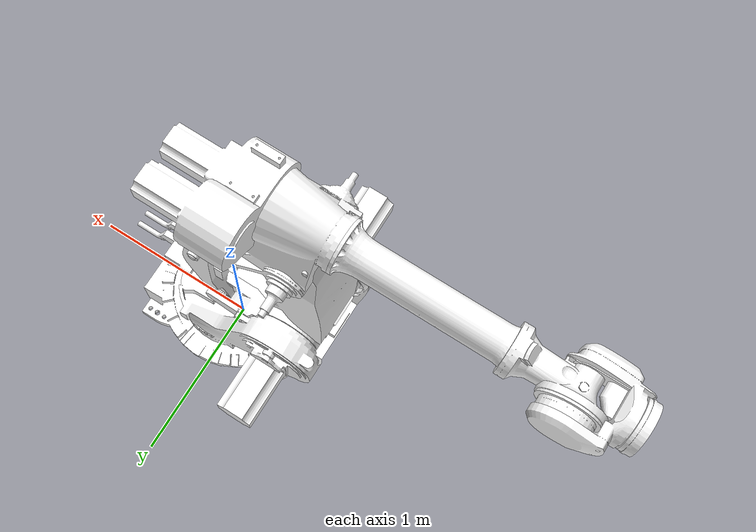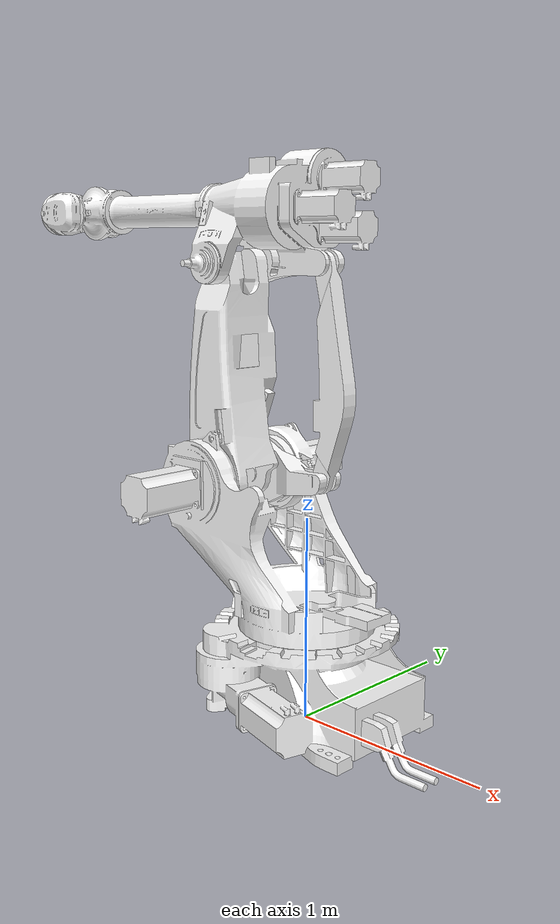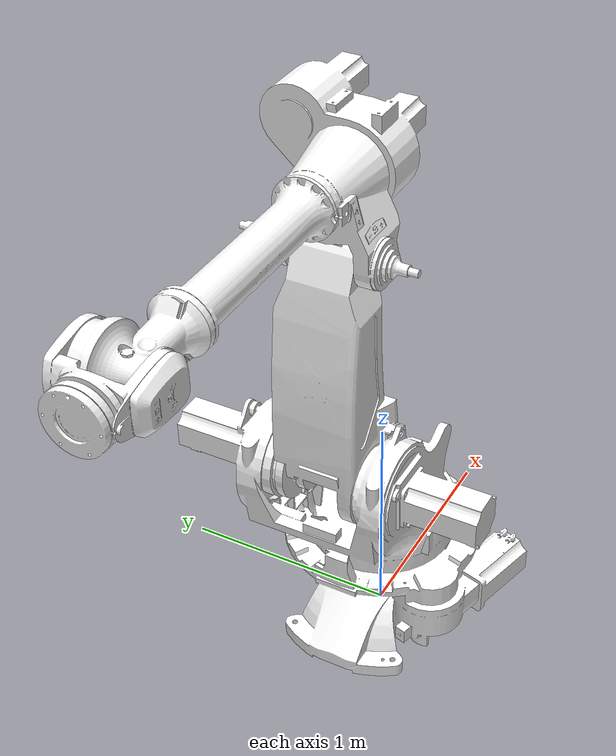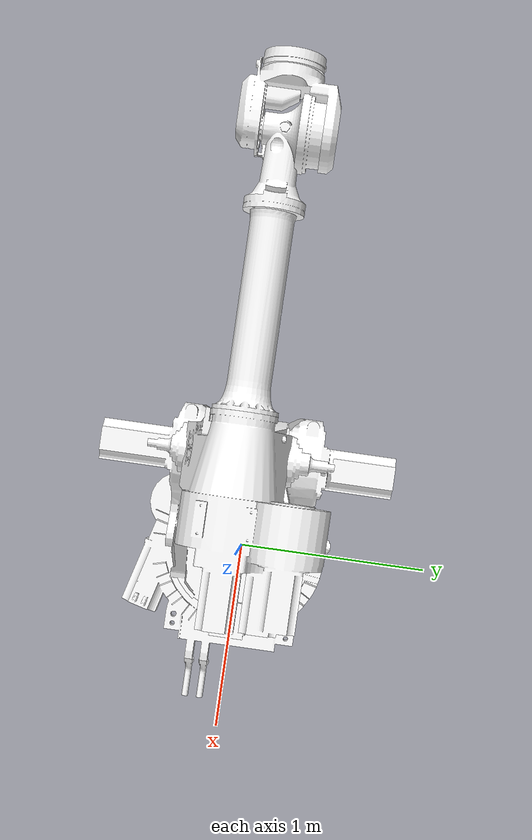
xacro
<?xml version="1.0" encoding="utf-8"?>
<robot
  name="robot_arm3">
  <link
    name="world" />
  <joint
    name="world_to_base_link"
    type="fixed">
    <origin
      xyz="0 0 0"
      rpy="0 0 0" />
    <parent
      link="world" />
    <child
      link="base_link" />
  </joint>
  <link
    name="base_link">
    <inertial>
      <origin
        xyz="0.0506232590748008 -0.0548266970438573 0.242008483472295"
        rpy="0 0 0" />
      <mass
        value="216.333805275604" />
      <inertia
        ixx="9.66692923372872"
        ixy="-0.244696571067987"
        ixz="1.32953092256858"
        iyy="16.2820097779157"
        iyz="0.246575547277278"
        izz="17.3203665607122" />
    </inertial>
    <visual>
      <origin
        xyz="0 0 0"
        rpy="0 0 0" />
      <geometry>
        <mesh
          filename="package://robot_arm3/meshes/base_link.STL" />
      </geometry>
      <material
        name="">
        <color
          rgba="1 1 1 1" />
      </material>
    </visual>
    <collision>
      <origin
        xyz="0 0 0"
        rpy="0 0 0" />
      <geometry>
        <mesh
          filename="package://robot_arm3/meshes/base_link.STL" />
      </geometry>
    </collision>
  </link>
  <link
    name="Link_1">
    <inertial>
      <origin
        xyz="-0.325058493715062 0.00618397075804262 -0.425511637199796"
        rpy="0 0 0" />
      <mass
        value="111.586923037547" />
      <inertia
        ixx="12.4549039631623"
        ixy="-0.0871563801452035"
        ixz="-4.75485680618687"
        iyy="12.9548487723321"
        iyz="0.00676482220717287"
        izz="11.5264684996682" />
    </inertial>
    <visual>
      <origin
        xyz="0 0 0"
        rpy="0 0 0" />
      <geometry>
        <mesh
          filename="package://robot_arm3/meshes/Link_1.STL" />
      </geometry>
      <material
        name="">
        <color
          rgba="1 1 1 1" />
      </material>
    </visual>
    <collision>
      <origin
        xyz="0 0 0"
        rpy="0 0 0" />
      <geometry>
        <mesh
          filename="package://robot_arm3/meshes/Link_1.STL" />
      </geometry>
    </collision>
  </link>
  <joint
    name="joint_1"
    type="revolute">
    <origin
      xyz="0 0 0.526"
      rpy="3.1416 0 0" />
    <parent
      link="base_link" />
    <child
      link="Link_1" />
    <axis
      xyz="0 0 1" />
    <limit
      lower="-3.14"
      upper="3.14"
      effort="2000"
      velocity="1" />
  </joint>
  <link
    name="Link_2">
    <inertial>
      <origin
        xyz="0.031571342662649 -0.435757260332822 -0.163306098653328"
        rpy="0 0 0" />
      <mass
        value="27.4443130699897" />
      <inertia
        ixx="3.55366806885427"
        ixy="-0.0051254164443175"
        ixz="0.0440666301114017"
        iyy="0.62115417210786"
        iyz="-0.0409550273093279"
        izz="3.38412801605233" />
    </inertial>
    <visual>
      <origin
        xyz="0 0 0"
        rpy="0 0 0" />
      <geometry>
        <mesh
          filename="package://robot_arm3/meshes/Link_2.STL" />
      </geometry>
      <material
        name="">
        <color
          rgba="1 1 1 1" />
      </material>
    </visual>
    <collision>
      <origin
        xyz="0 0 0"
        rpy="0 0 0" />
      <geometry>
        <mesh
          filename="package://robot_arm3/meshes/Link_2.STL" />
      </geometry>
    </collision>
  </link>
  <joint
    name="joint_2"
    type="revolute">
    <origin
      xyz="-0.46 0.164 -0.614"
      rpy="1.5708 0 3.1416" />
    <parent
      link="Link_1" />
    <child
      link="Link_2" />
    <axis
      xyz="0 0 1" />
    <limit
      lower="-1.3"
      upper="1.3"
      effort="2000"
      velocity="1" />
  </joint>
  <link
    name="Link_3">
    <inertial>
      <origin
        xyz="0.221079386390616 -0.237881703887612 0.216080525737691"
        rpy="0 0 0" />
      <mass
        value="82.8346347307404" />
      <inertia
        ixx="2.68793381829391"
        ixy="0.371511884462949"
        ixz="-0.451791535575442"
        iyy="2.83366677645353"
        iyz="0.290673551230455"
        izz="2.78709509645054" />
    </inertial>
    <visual>
      <origin
        xyz="0 0 0"
        rpy="0 0 0" />
      <geometry>
        <mesh
          filename="package://robot_arm3/meshes/Link_3.STL" />
      </geometry>
      <material
        name="">
        <color
          rgba="1 1 1 1" />
      </material>
    </visual>
    <collision>
      <origin
        xyz="0 0 0"
        rpy="0 0 0" />
      <geometry>
        <mesh
          filename="package://robot_arm3/meshes/Link_3.STL" />
      </geometry>
    </collision>
  </link>
  <joint
    name="joint_3"
    type="revolute">
    <origin
      xyz="0 -1.05 -0.013"
      rpy="-3.1416 0 3.1416" />
    <parent
      link="Link_2" />
    <child
      link="Link_3" />
    <axis
      xyz="0 0 1" />
    <limit
      lower="-3.14"
      upper="3.14"
      effort="2000"
      velocity="1" />
    <dynamics
      damping="0.1"
      friction="0.0" />
  </joint>
  <link
    name="Link_4">
    <inertial>
      <origin
        xyz="-6.82974183821017E-05 -0.0368975826054763 -0.8325256223876"
        rpy="0 0 0" />
      <mass
        value="15.7635262485067" />
      <inertia
        ixx="0.475071298157737"
        ixy="6.4999048005855E-05"
        ixz="1.56982071726133E-05"
        iyy="0.46577831946917"
        iyz="-0.0338725018651429"
        izz="0.115819964731533" />
    </inertial>
    <visual>
      <origin
        xyz="0 0 0"
        rpy="0 0 0" />
      <geometry>
        <mesh
          filename="package://robot_arm3/meshes/Link_4.STL" />
      </geometry>
      <material
        name="">
        <color
          rgba="1 1 1 1" />
      </material>
    </visual>
    <collision>
      <origin
        xyz="0 0 0"
        rpy="0 0 0" />
      <geometry>
        <mesh
          filename="package://robot_arm3/meshes/Link_4.STL" />
      </geometry>
    </collision>
  </link>
  <joint
    name="joint_4"
    type="revolute">
    <origin
      xyz="-0.155 -0.25 0.151"
      rpy="-1.5708 0 -1.5708" />
    <parent
      link="Link_3" />
    <child
      link="Link_4" />
    <axis
      xyz="0 0 1" />
    <limit
      lower="-47.12"
      upper="47.12"
      effort="2000"
      velocity="1" />
  </joint>
  <link
    name="Link_5">
    <inertial>
      <origin
        xyz="-5.74621655591301E-07 0.111056522193111 -0.0691533292600062"
        rpy="0 0 0" />
      <mass
        value="10.599872955139" />
      <inertia
        ixx="0.234707289944283"
        ixy="-1.35752805972676E-07"
        ixz="6.71365643071683E-07"
        iyy="0.175455708338832"
        iyz="0.00474034869122363"
        izz="0.124627798006191" />
    </inertial>
    <visual>
      <origin
        xyz="0 0 0"
        rpy="0 0 0" />
      <geometry>
        <mesh
          filename="package://robot_arm3/meshes/Link_5.STL" />
      </geometry>
      <material
        name="">
        <color
          rgba="1 1 1 1" />
      </material>
    </visual>
    <collision>
      <origin
        xyz="0 0 0"
        rpy="0 0 0" />
      <geometry>
        <mesh
          filename="package://robot_arm3/meshes/Link_5.STL" />
      </geometry>
    </collision>
  </link>
  <joint
    name="joint_5"
    type="revolute">
    <origin
      xyz="0 0.08 -1.05"
      rpy="-1.5708 0 0" />
    <parent
      link="Link_4" />
    <child
      link="Link_5" />
    <axis
      xyz="0 0 1" />
    <limit
      lower="-2.18"
      upper="2.18"
      effort="2000"
      velocity="1" />
  </joint>
  <link
    name="Link_6">
    <inertial>
      <origin
        xyz="-0.000214379735330894 -0.000113813148874417 -0.00366235060272779"
        rpy="0 0 0" />
      <mass
        value="1.11777440271544" />
      <inertia
        ixx="0.00516206301646668"
        ixy="2.0450202245576E-07"
        ixz="-2.30214144734367E-06"
        iyy="0.00515170767564228"
        iyz="3.04297475169887E-06"
        izz="0.0098887895078367" />
    </inertial>
    <visual>
      <origin
        xyz="0 0 0"
        rpy="0 0 0" />
      <geometry>
        <mesh
          filename="package://robot_arm3/meshes/Link_6.STL" />
      </geometry>
      <material
        name="">
        <color
          rgba="1 1 1 1" />
      </material>
    </visual>
    <collision>
      <origin
        xyz="0 0 0"
        rpy="0 0 0" />
      <geometry>
        <mesh
          filename="package://robot_arm3/meshes/Link_6.STL" />
      </geometry>
    </collision>
  </link>
  <joint
    name="joint_6"
    type="revolute">
    <origin
      xyz="0 0.2585 -0.08"
      rpy="1.5708 0 0" />
    <parent
      link="Link_5" />
    <child
      link="Link_6" />
    <axis
      xyz="0 0 1" />
    <limit
      lower="-47.12"
      upper="47.12"
      effort="2000"
      velocity="1" />
  </joint>
  <link
    name="Link_7">
    <inertial>
      <origin
        xyz="0.16561987974766 0.00169625585748889 -0.0144577166138153"
        rpy="0 0 0" />
      <mass
        value="7.59321189232814" />
      <inertia
        ixx="0.0401319769797729"
        ixy="-0.00412953079473418"
        ixz="-0.00248052767221614"
        iyy="0.197404302795005"
        iyz="-0.000102622916173881"
        izz="0.219173453819442" />
    </inertial>
    <visual>
      <origin
        xyz="0 0 0"
        rpy="0 0 0" />
      <geometry>
        <mesh
          filename="package://robot_arm3/meshes/Link_7.STL" />
      </geometry>
      <material
        name="">
        <color
          rgba="1 1 1 1" />
      </material>
    </visual>
    <collision>
      <origin
        xyz="0 0 0"
        rpy="0 0 0" />
      <geometry>
        <mesh
          filename="package://robot_arm3/meshes/Link_7.STL" />
      </geometry>
    </collision>
  </link>
  <joint
    name="joint_7"
    type="revolute">
    <origin
      xyz="-0.46 -0.164 -0.614"
      rpy="1.5708 0 0" />
    <parent
      link="Link_1" />
    <child
      link="Link_7" />
    <axis
      xyz="0 0 1" />
    <limit
      lower="-3.14"
      upper="3.14"
      effort="2000"
      velocity="1" />
  </joint>
  <link
    name="Link_8">
    <inertial>
      <origin
        xyz="-0.0623370873788814 0.503943869795015 -0.030099031406005"
        rpy="0 0 0" />
      <mass
        value="10.5960008934058" />
      <inertia
        ixx="0.819811620009429"
        ixy="-0.0129095512670092"
        ixz="0.000108114911060372"
        iyy="0.0283683801225339"
        iyz="-0.00106314530410718"
        izz="0.836445936541138" />
    </inertial>
    <visual>
      <origin
        xyz="0 0 0"
        rpy="0 0 0" />
      <geometry>
        <mesh
          filename="package://robot_arm3/meshes/Link_8.STL" />
      </geometry>
      <material
        name="">
        <color
          rgba="1 1 1 1" />
      </material>
    </visual>
    <collision>
      <origin
        xyz="0 0 0"
        rpy="0 0 0" />
      <geometry>
        <mesh
          filename="package://robot_arm3/meshes/Link_8.STL" />
      </geometry>
    </collision>
  </link>
  <joint
    name="joint_8"
    type="revolute">
    <origin
      xyz="0.4 0 0.028"
      rpy="0 0 3.1416" />
    <parent
      link="Link_7" />
    <child
      link="Link_8" />
    <axis
      xyz="0 0 1" />
    <limit
      lower="-3.14"
      upper="3.14"
      effort="2000"
      velocity="1" />
    <dynamics
      damping="0.1"
      friction="0.0" />
  </joint>
  <ros2_control
    name="GazeboSimSystem"
    type="system">
    <hardware>
      <plugin>gz_ros2_control/GazeboSimSystem</plugin>
    </hardware>
    <joint name="joint_1">
      <command_interface name="position" />
      <state_interface name="position" />
      <state_interface name="velocity" />
    </joint>
    <joint name="joint_2">
      <command_interface name="position" />
      <state_interface name="position" />
      <state_interface name="velocity" />
    </joint>
    <joint name="joint_4">
      <command_interface name="position" />
      <state_interface name="position" />
      <state_interface name="velocity" />
    </joint>
    <joint name="joint_5">
      <command_interface name="position" />
      <state_interface name="position" />
      <state_interface name="velocity" />
    </joint>
    <joint name="joint_6">
      <command_interface name="position" />
      <state_interface name="position" />
      <state_interface name="velocity" />
    </joint>
    <joint name="joint_7">
      <command_interface name="position" />
      <state_interface name="position" />
      <state_interface name="velocity" />
    </joint>
  </ros2_control>
  <gazebo>
    <plugin
      filename="gz_ros2_control-system"
      name="gz_ros2_control::GazeboSimROS2ControlPlugin">
      <parameters>$(find robot_arm3)/config/ros2_controllers_closed_loop.yaml</parameters>
      <position_proportional_gain>1000.0</position_proportional_gain>
    </plugin>

    <!-- Gazebo/SDF-only closed-loop test joint. Do not add this joint to the standard URDF tree. -->
    <joint name="joint_9" type="revolute">
      <pose>0 1.05 0 0 0 3.1416</pose>
      <parent>Link_8</parent>
      <child>Link_3</child>
      <axis>
        <xyz>0 0 1</xyz>
        <limit>
          <lower>-3.14</lower>
          <upper>3.14</upper>
          <effort>2000</effort>
          <velocity>1</velocity>
        </limit>
        <dynamics>
          <damping>0.1</damping>
          <friction>0.0</friction>
        </dynamics>
      </axis>
    </joint>
  </gazebo>
</robot>
